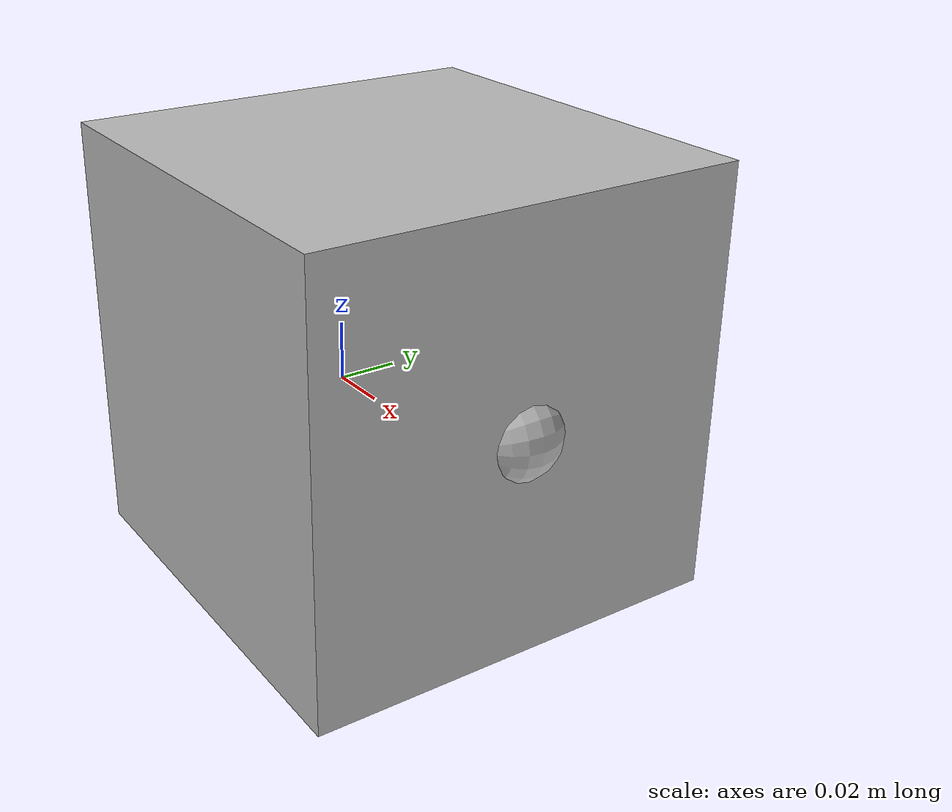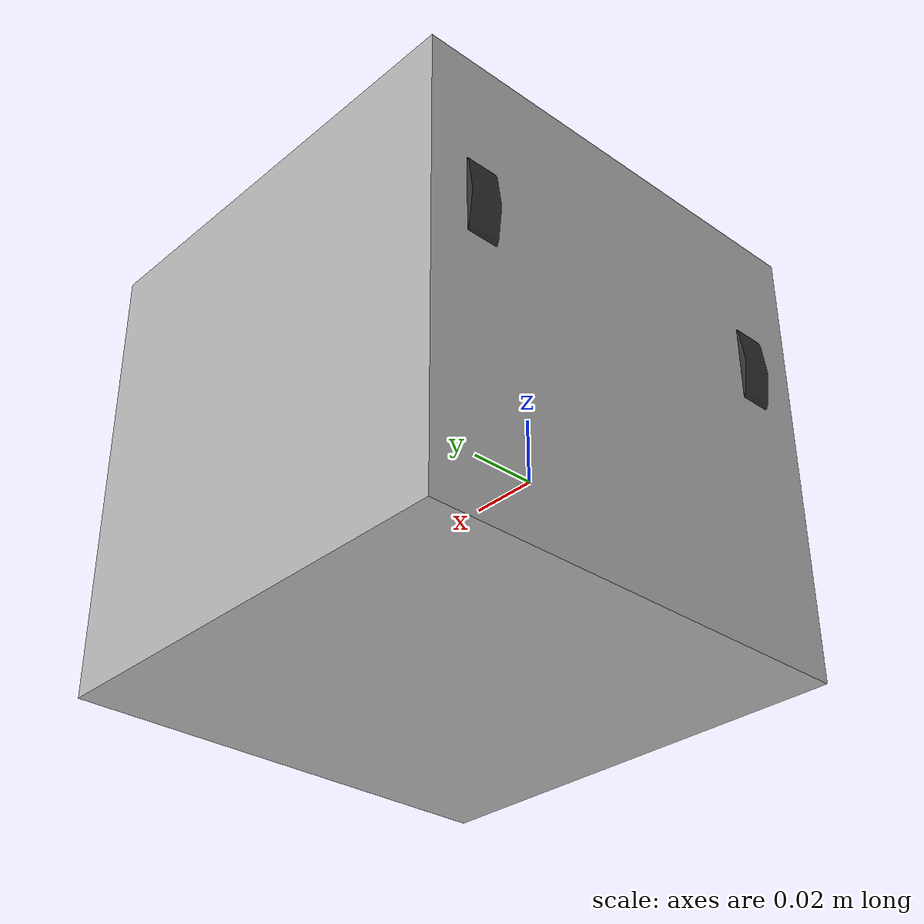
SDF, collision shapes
<?xml version="1.0" ?>
<sdf version="1.6">
    <model name='bumblebee' canonical_link='base_link'>
        <pose>0 0 0.02 0 0 0</pose>

        <link name="base_footprint"/>

        <link name="base_link">

            <inertial>
                <pose>0.032 0 0 0 0 0</pose>
                <inertia>
                    <ixx>7.2397393e-01</ixx>
                    <ixy>4.686399e-10</ixy>
                    <ixz>-1.09525703e-08</ixz>
                    <iyy>7.2397393e-01</iyy>
                    <iyz>2.8582649e-09</iyz>
                    <izz>6.53050163e-01</izz>
                </inertia>
                <mass>8.2573504e-01</mass>
            </inertial>

            <collision name="base_collision">
                <pose>0.032 0 0 0 0 0</pose>
                <geometry>
                    <box>
                        <size>0.140 0.140 0.140</size>
                    </box>
                </geometry>
            </collision>

            <visual name="base_visual">
                <pose>0.032 0 0 0 0 0</pose>
                <geometry>
                    <mesh>
                        <uri>meshes/turtle1.dae</uri>
                        <scale>0.001 0.001 0.001</scale>
                    </mesh>
                </geometry>
            </visual>
        </link>

        <joint name="base_joint" type="fixed">
            <parent>base_footprint</parent>
            <child>base_link</child>
            <pose>0.0 0.0 0.010 0 0 0</pose>
        </joint>

        <!-- Left Wheel Link -->
        <joint name="left_wheel_joint" type="revolute">
            <parent>base_link</parent>
            <child>left_wheel_link</child>
            <pose>0.0 0.053 0.023 -1.57 0 0</pose>
            <axis>
                <xyz>0 0 1</xyz>
                <limit>
                    <effort>20</effort>
                </limit>
            </axis>
        </joint>

        <link name="left_wheel_link">

            <inertial>
                <pose>0 0.053 0.023 -1.57 0 0</pose>
                <inertia>
                    <ixx>1.8158194e-03</ixx>
                    <ixy>-9.3392e-12</ixy>
                    <ixz>1.04909e-11</ixz>
                    <iyy>3.2922126e-03</iyy>
                    <iyz>5.75694e-11</iyz>
                    <izz>1.8158194e-03</izz>
                </inertia>
                <mass>2.8498940e-02</mass>
            </inertial>

            <collision name="left_wheel_collision">
                <pose>0 0.053 0.023 -1.57 0 0</pose>
                <geometry>
                    <cylinder>
                        <radius>0.04</radius>
                        <length>0.01</length>
                    </cylinder>
                </geometry>
                <surface>
                    <!-- This friction pamareter don't contain reliable data!! -->
                    <friction>
                        <ode>
                            <mu>100000.0</mu>
                            <mu2>100000.0</mu2>
                            <fdir1>0 0 0</fdir1>
                            <slip1>0.0</slip1>
                            <slip2>0.0</slip2>
                        </ode>
                    </friction>
                    <contact>
                        <ode>
                            <soft_cfm>0</soft_cfm>
                            <soft_erp>0.2</soft_erp>
                            <kp>1e+5</kp>
                            <kd>1</kd>
                            <max_vel>0.01</max_vel>
                            <min_depth>0.001</min_depth>
                        </ode>
                    </contact>
                </surface>
            </collision>

            <visual name="left_wheel_visual">
                <pose>0 0.053 0.023 -1.57 0 0</pose>
                <geometry>
                    <cylinder>
                        <radius>0.04</radius>
                        <length>0.01</length>
                    </cylinder>
                </geometry>
                <material>
                    <ambient>0.2 0.2 0.2 1</ambient>
                    <diffuse>0.2 0.2 0.2 1</diffuse>
                    <specular>1 1 1 1</specular>
                </material>
            </visual>
        </link>

        <!-- Right Wheel Link -->
        <joint name="right_wheel_joint" type="revolute">
            <parent>base_link</parent>
            <child>right_wheel_link</child>
            <pose>0.0 -0.053 0.023 -1.57 0 0</pose>
            <axis>
                <xyz>0 0 -1</xyz>
                <limit>
                    <effort>20</effort>
                </limit>
            </axis>
        </joint>

        <link name="right_wheel_link">
            <inertial>
                <pose>0.0 -0.053 0.023 -1.57 0 0</pose>
                <inertia>
                    <ixx>1.8158194e-03</ixx>
                    <ixy>-9.3392e-12</ixy>
                    <ixz>1.04909e-11</ixz>
                    <iyy>3.2922126e-03</iyy>
                    <iyz>5.75694e-11</iyz>
                    <izz>1.8158194e-03</izz>
                </inertia>
                <mass>2.8498940e-02</mass>
            </inertial>
            <collision name="right_wheel_collision">
                <pose>0.0 -0.053 0.023 -1.57 0 0</pose>
                <geometry>
                    <cylinder>
                        <radius>0.04</radius>
                        <length>0.01</length>
                    </cylinder>
                </geometry>
                <surface>
                    <!-- This friction pamareter don't contain reliable data!! -->
                    <friction>
                        <ode>
                            <mu>100000.0</mu>
                            <mu2>100000.0</mu2>
                            <fdir1>0 0 0</fdir1>
                            <slip1>0.0</slip1>
                            <slip2>0.0</slip2>
                        </ode>
                    </friction>
                    <contact>
                        <ode>
                            <soft_cfm>0</soft_cfm>
                            <soft_erp>0.2</soft_erp>
                            <kp>1e+5</kp>
                            <kd>1</kd>
                            <max_vel>0.01</max_vel>
                            <min_depth>0.001</min_depth>
                        </ode>
                    </contact>
                </surface>
            </collision>
            <visual name="right_wheel_visual">
                <pose>0.0 -0.053 0.023 -1.57 0 0</pose>
                <geometry>
                    <cylinder>
                        <radius>0.04</radius>
                        <length>0.01</length>
                    </cylinder>
                </geometry>
                <material>
                    <ambient>0.2 0.2 0.2 1</ambient>
                    <diffuse>0.2 0.2 0.2 1</diffuse>
                    <specular>1 1 1 1</specular>
                </material>
            </visual>
        </link>

        <!-- Caster Wheel Link -->
        <joint name='caster_wheel_joint' type='ball'>
            <parent>base_link</parent>
            <child>caster_wheel_link</child>
        </joint>

        <link name='caster_wheel_link'>
            <pose>0.093 0 0 -1.57 0 0</pose>
            <inertial>
                <mass>0.005</mass>
                <inertia>
                    <ixx>0.001</ixx>
                    <ixy>0.000</ixy>
                    <ixz>0.000</ixz>
                    <iyy>0.001</iyy>
                    <iyz>0.000</iyz>
                    <izz>0.001</izz>
                </inertia>
            </inertial>
            <collision name='collision'>
                <geometry>
                    <sphere>
                        <radius>0.015</radius>
                    </sphere>
                </geometry>
                <surface>
                    <contact>
                        <ode>
                            <soft_cfm>0</soft_cfm>
                            <soft_erp>0.2</soft_erp>
                            <kp>1e+5</kp>
                            <kd>1</kd>
                            <max_vel>0.01</max_vel>
                            <min_depth>0.001</min_depth>
                        </ode>
                    </contact>
                </surface>
            </collision>
            <visual name='castor_visual'>
                <geometry>
                    <sphere>
                        <radius>0.015</radius>
                    </sphere>
                </geometry>
            </visual>
        </link>

        <plugin filename="gz-sim-diff-drive-system" name="gz::sim::systems::DiffDrive">

            <!-- wheels -->
            <left_joint>left_wheel_joint</left_joint>
            <right_joint>right_wheel_joint</right_joint>
            <joint_name>caster_wheel_joint</joint_name>

            <!-- kinematics -->
            <wheel_separation>0.106</wheel_separation>
            <wheel_radius>0.08</wheel_radius>

            <!-- limits -->
            <max_linear_acceleration>0.033</max_linear_acceleration>

            <topic>cmd_vel</topic>

            <odom_topic>odom</odom_topic>
            <frame_id>odom</frame_id>
            <child_frame_id>base_footprint</child_frame_id>
            <odom_publisher_frequency>30</odom_publisher_frequency>

            <tf_topic>/tf</tf_topic>            <!-- Short topic name for tf output -->

        </plugin>

        <plugin filename="gz-sim-joint-state-publisher-system" name="gz::sim::systems::JointStatePublisher">
            <topic>joint_states</topic>
            <joint_name>left_wheel_joint</joint_name>
            <joint_name>right_wheel_joint</joint_name>
            <joint_name>caster_wheel_joint</joint_name>
        </plugin>
    </model>
</sdf>
